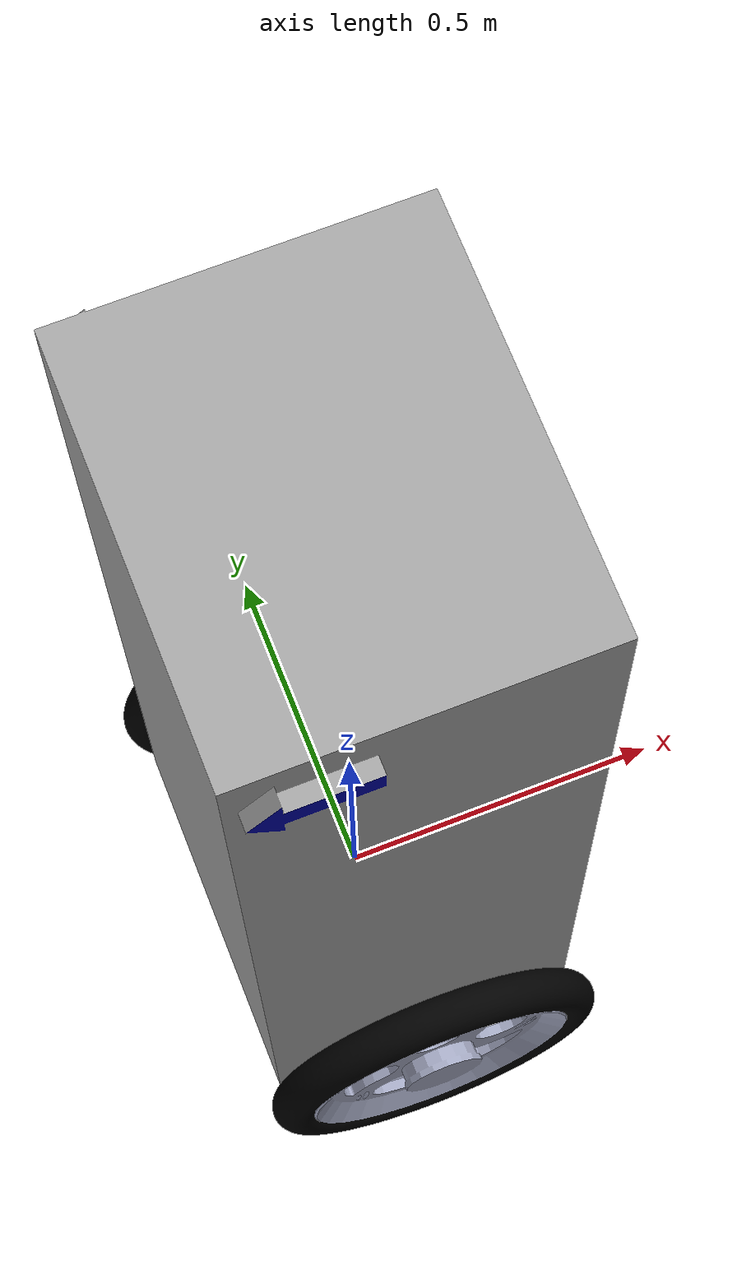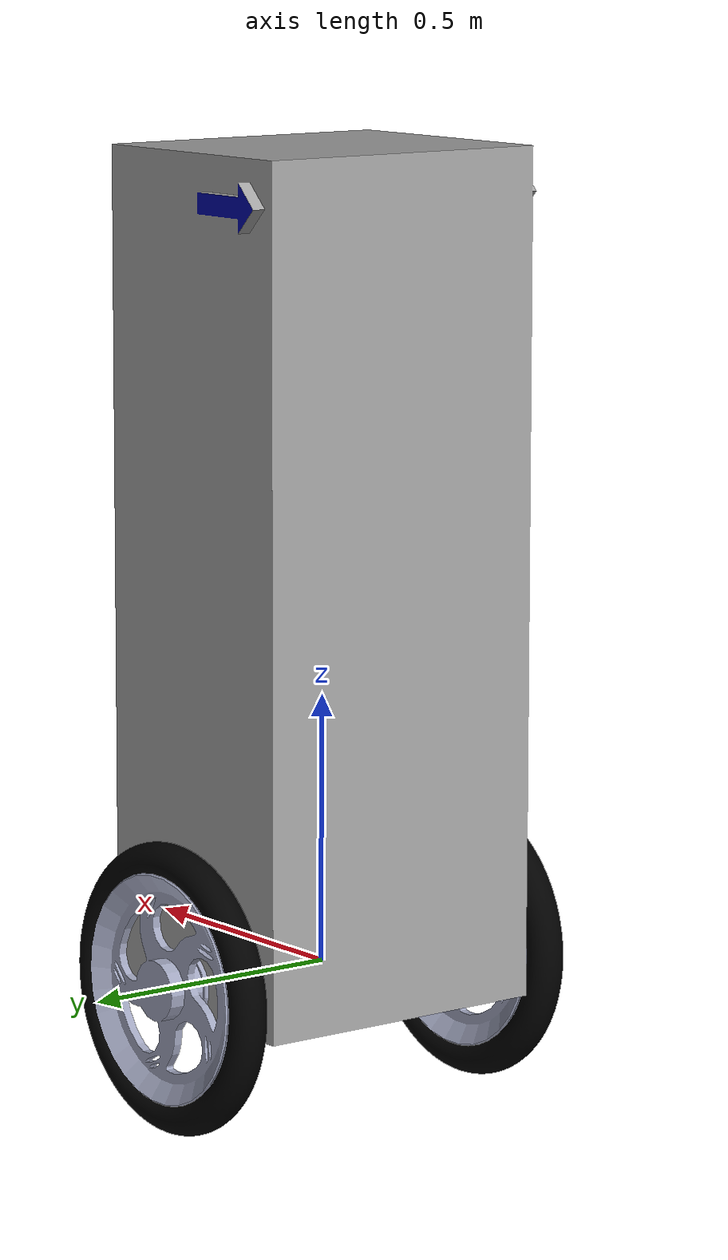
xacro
<robot name="3_dof" xmlns:xacro="http://www.ros.org/wiki/xacro">

<xacro:property name="wheel_separation" value="0.68" />
<link name="3dof_body">

    <visual>
      <geometry>
        <mesh filename="package://krang_simplified/3dof/base2.dae" />
      </geometry>
    </visual>

    <inertial>
      <mass value="2.18"/>
      <inertia ixx="0.5" ixy="0.0" ixz="0.0" iyy="0.49" iyz="0.0" izz="0.10"/>
      <origin xyz="0 0 0.72" />
    </inertial>

  </link>

  <link name="wheelR">

    <visual>
      <geometry>
        <mesh filename="package://krang_simplified/3dof/wheel.dae" />
      </geometry>
    </visual>

    <collision>
      <geometry>
        <mesh filename="package://krang_simplified/3dof/wheel.dae" />
      </geometry>
    </collision>

    <inertial>
	    <mass value="0.04"/>
	    <inertia ixx="0.005" ixy="0" ixz="0" iyy="0.0025" iyz="0" izz="0.0025"/>
	    <origin xyz="0 0 0"/>
    </inertial>

    <soft_shape>
	    <total_mass>0.04</total_mass>
	    <geometry>
	        <mesh filename="package://krang_simplified/3dof/wheel.dae" />
	    </geometry>
		<kv>500.0</kv>
		<ke>0.0</ke>
		<damp>5.0</damp>
        </soft_shape>

  </link>

    <link name="wheelL">

    <visual>
      <geometry>
        <mesh filename="package://krang_simplified/3dof/wheel.dae" />
      </geometry>
    </visual>

    <collision>
      <geometry>
        <mesh filename="package://krang_simplified/3dof/wheel.dae" />
      </geometry>
    </collision>

    <inertial>
	    <mass value="0.04"/>
	    <inertia ixx="0.005" ixy="0" ixz="0" iyy="0.0025" iyz="0" izz="0.0025"/>
	    <origin xyz="0 0 0"/>
    </inertial>

    <soft_shape>
	    <total_mass>0.04s</total_mass>
	    <geometry>
	        <mesh filename="package://krang_simplified/3dof/wheel.dae" />
	    </geometry>
		<kv>500.0</kv>
		<ke>0.0</ke>
		<damp>5.0</damp>
        </soft_shape>

  </link>

  <joint name="jointR" type="continuous">
    <parent link="3dof_body"/> <child link="wheelR"/>
    <origin xyz = "0 ${-wheel_separation * 0.5} 0" rpy="0 0 0" />
	<axis xyz="0 1 0" />
  </joint>

  <joint name="jointL" type="continuous">
    <parent link="3dof_body"/> <child link="wheelL"/>
    <origin xyz = "0 ${+wheel_separation * 0.5} 0" rpy="0 0 0" />
	<axis xyz="0 1 0" />
  </joint>

  <gazebo>
	<plugin name="gazebo_ros_control" filename="libgazebo_ros_control.so">
	<robotNamespace>/3dof</robotNamespace>
	<robotSimType>gazebo_ros_control/DefaultRobotHWSim</robotSimType>
	<legacyModeNS>true</legacyModeNS>
	</plugin>
  </gazebo>

  <gazebo>
   <plugin name="edumip_balance_ros_gazebo_plugin" filename="libedumip_balance_ros_gazebo_plugin.so">
   <rosDebugLevel>3</rosDebugLevel>
   <updateRate>100</updateRate>
   <robotBaseFrame>3dof_body</robotBaseFrame>
   <leftJoint>jointL</leftJoint>
   <rightJoint>jointR</rightJoint>
   <wheelSeparation>${wheel_separation}</wheelSeparation>
   <wheelDiameter>0.068</wheelDiameter>
   <commandTopic>/edumip/cmd</commandTopic>
   <stateTopic>/edumip/state</stateTopic>
   </plugin>
 </gazebo>

</robot>
